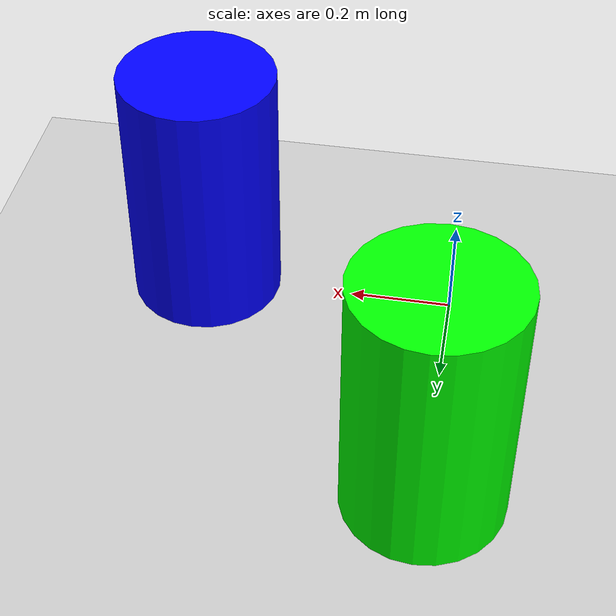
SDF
<?xml version="1.0"?>
<sdf version="1.6">
  <world name="default">

    <!-- Plugins -->
    <plugin filename="gz-sim-physics-system" name="gz::sim::systems::Physics"/>
    <plugin filename="gz-sim-user-commands-system" name="gz::sim::systems::UserCommands"/>
    <plugin filename="gz-sim-scene-broadcaster-system" name="gz::sim::systems::SceneBroadcaster"/>
    <plugin filename="gz-sim-sensors-system" name="gz::sim::systems::Sensors">
      <render_engine>ogre2</render_engine>
    </plugin>
    <plugin filename="gz-sim-imu-system" name="gz::sim::systems::Imu"/>

    <!-- Environment -->
    <include>
      <uri>https://fuel.gazebosim.org/1.0/OpenRobotics/models/Ground Plane</uri>
    </include>
    <include>
      <uri>https://fuel.gazebosim.org/1.0/OpenRobotics/models/Sun</uri>
    </include>

    <scene>
      <shadows>false</shadows>
    </scene>

    <gui fullscreen='0'>
      <camera name='user_camera'>
        <pose frame=''>0.319654 -0.235002 9.29441 0 1.5138 0.009599</pose>
        <view_controller>orbit</view_controller>
        <projection_type>perspective</projection_type>
      </camera>
    </gui>

    <physics type="ode">
      <real_time_update_rate>1000.0</real_time_update_rate>
      <max_step_size>0.001</max_step_size>
      <real_time_factor>1</real_time_factor>
      <ode>
        <solver>
          <type>quick</type>
          <iters>150</iters>
          <precon_iters>0</precon_iters>
          <sor>1.4</sor>
          <use_dynamic_moi_rescaling>1</use_dynamic_moi_rescaling>
        </solver>
        <constraints>
          <cfm>0.00001</cfm>
          <erp>0.2</erp>
          <contact_max_correcting_vel>2000.0</contact_max_correcting_vel>
          <contact_surface_layer>0.01</contact_surface_layer>
        </constraints>
      </ode>
    </physics>

    <!-- Custom cylinder obstacles -->

    <model name="cylinder_obs1">
      <pose>0.5 0.0 0.25 0 0 0</pose> <!-- x y z roll pitch yaw -->
      <link name="link">
        <visual name="visual">
          <geometry>
            <cylinder>
              <radius>0.15</radius>
              <length>0.5</length>
            </cylinder>
          </geometry>
          <material>
            <ambient>0 0 1 1</ambient> <!-- blue -->
            <diffuse>0 0 1 1</diffuse>
          </material>
        </visual>
        <collision name="collision">
          <geometry>
            <cylinder>
              <radius>0.15</radius>
              <length>0.5</length>
            </cylinder>
          </geometry>
        </collision>
        <inertial>
          <mass>1.0</mass>
        </inertial>
      </link>
    </model>

    <model name="cylinder_obs2">
      <pose>0 0.5 0.25 0 0 0</pose>
      <link name="link">
        <visual name="visual">
          <geometry>
            <cylinder>
              <radius>0.15</radius>
              <length>0.5</length>
            </cylinder>
          </geometry>
          <material>
            <ambient>0 1 0 1</ambient> <!-- green -->
            <diffuse>0 1 0 1</diffuse>
          </material>
        </visual>
        <collision name="collision">
          <geometry>
            <cylinder>
              <radius>0.15</radius>
              <length>0.5</length>
            </cylinder>
          </geometry>
        </collision>
        <inertial>
          <mass>1.0</mass>
        </inertial>
      </link>
    </model>

  </world>
</sdf>
